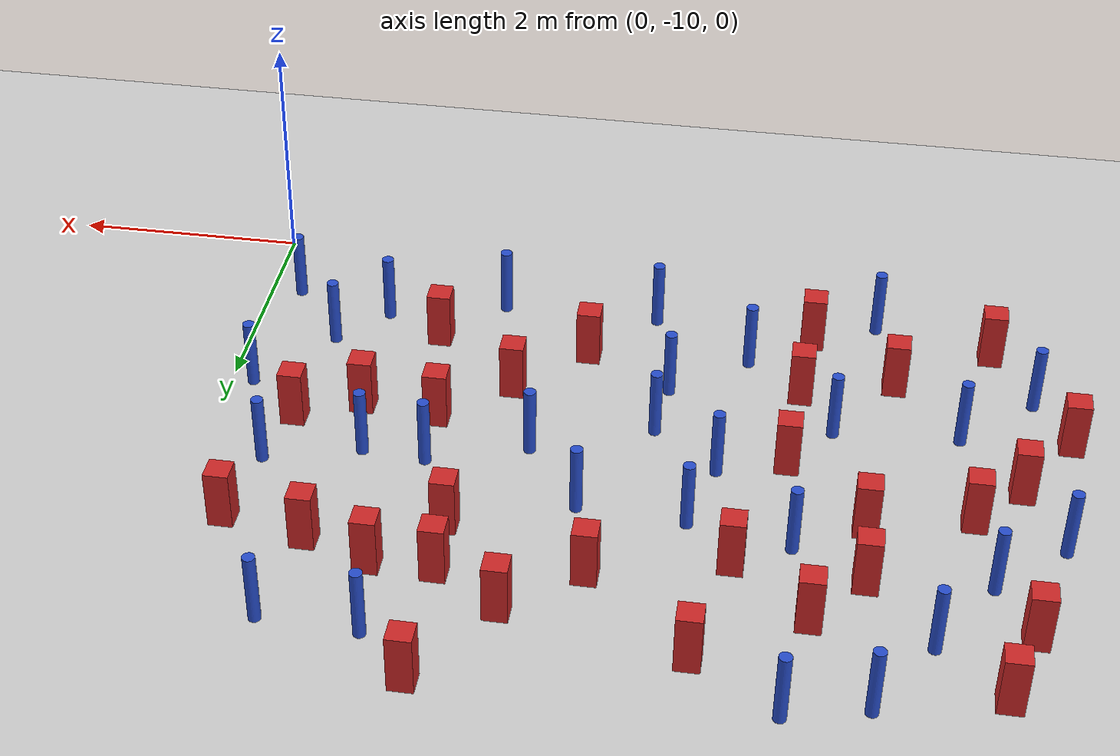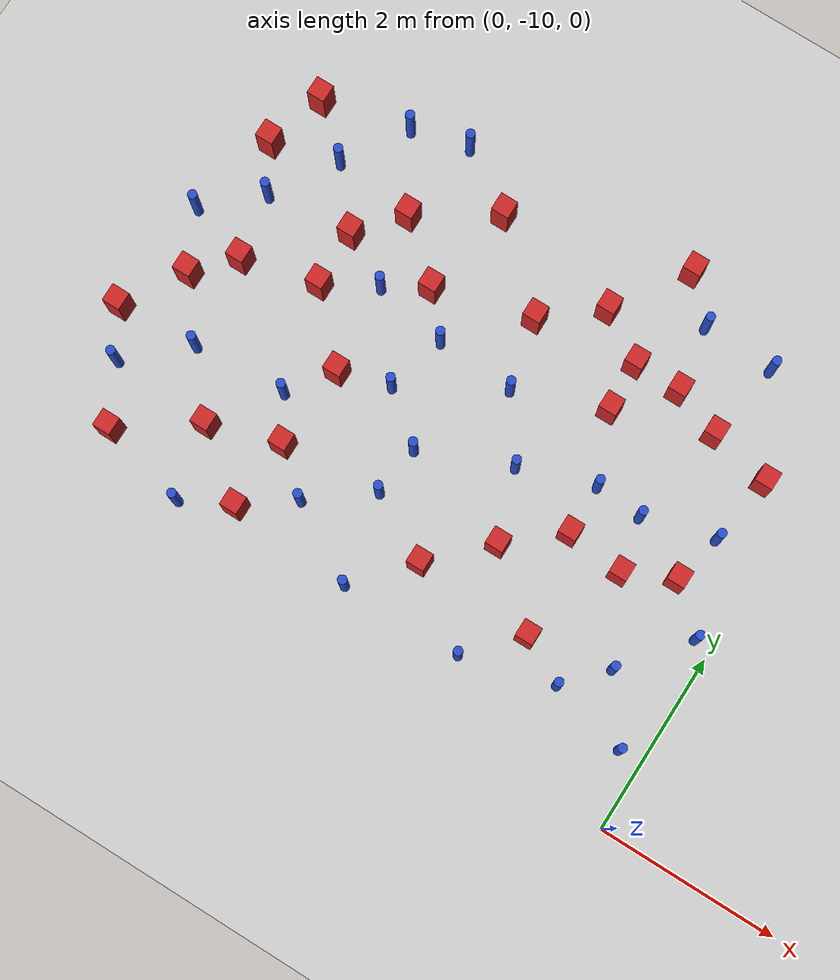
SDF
<sdf version="1.6">
 <world name="default">
  <model name="ground_plane">
   <static>1</static>
   <link name="link">
    <collision name="collision">
     <geometry><plane><normal>0 0 1</normal><size>100 100</size></plane></geometry>
     <surface><friction><ode><mu>100</mu><mu2>50</mu2></ode></friction></surface>
    </collision>
    <visual name="visual">
     <cast_shadows>0</cast_shadows>
     <geometry><plane><normal>0 0 1</normal><size>100 100</size></plane></geometry>
     <material>
      <ambient>1.0 1.0 1.0 1.0</ambient>
      <diffuse>0.8 0.8 0.8 1.0</diffuse>
      <specular>0.01 0.01 0.01 1.000000</specular>
     </material>
    </visual>
   </link>
  </model>
  <model name="square_post_obstacle0">
   <static>true</static>
   <pose>-2.3891648593 -8.11974286736 1.91545236811e-07 -7.35059704564e-06 1.12565212e-07 2.39332434364e-05</pose>
   <link name="link">
    <pose>0 0 0.25 0 -0 0</pose>
    <inertial>
     <mass>100</mass>
     <inertia>
      <ixx>0.166667</ixx>
      <ixy>0</ixy>
      <ixz>0</ixz>
      <iyy>0.166667</iyy>
      <iyz>0</iyz>
      <izz>0.166667</izz>
     </inertia>
    </inertial>
    <collision name="collision"><geometry><box><size>.2 .2 .5</size></box></geometry></collision>
    <visual name="visual">
     <geometry><box><size>.2 .2 .5</size></box></geometry>
     <material>
      <script><name>Gazebo/Red</name><uri>file://media/materials/scripts/gazebo.material</uri></script>
     </material>
    </visual>
   </link>
  </model>
  <model name="square_post_obstacle5">
   <static>true</static>
   <pose>-2.180293744 -4.64362342363 1.91545236811e-07 -7.35059704564e-06 1.12565212e-07 2.39332434364e-05</pose>
   <link name="link">
    <pose>0 0 0.25 0 -0 0</pose>
    <inertial>
     <mass>100</mass>
     <inertia>
      <ixx>0.166667</ixx>
      <ixy>0</ixy>
      <ixz>0</ixz>
      <iyy>0.166667</iyy>
      <iyz>0</iyz>
      <izz>0.166667</izz>
     </inertia>
    </inertial>
    <collision name="collision"><geometry><box><size>.2 .2 .5</size></box></geometry></collision>
    <visual name="visual">
     <geometry><box><size>.2 .2 .5</size></box></geometry>
     <material>
      <script><name>Gazebo/Red</name><uri>file://media/materials/scripts/gazebo.material</uri></script>
     </material>
    </visual>
   </link>
  </model>
  <model name="square_post_obstacle7">
   <static>true</static>
   <pose>-2.71536622169 -5.4466309811 1.91545236811e-07 -7.35059704564e-06 1.12565212e-07 2.39332434364e-05</pose>
   <link name="link">
    <pose>0 0 0.25 0 -0 0</pose>
    <inertial>
     <mass>100</mass>
     <inertia>
      <ixx>0.166667</ixx>
      <ixy>0</ixy>
      <ixz>0</ixz>
      <iyy>0.166667</iyy>
      <iyz>0</iyz>
      <izz>0.166667</izz>
     </inertia>
    </inertial>
    <collision name="collision"><geometry><box><size>.2 .2 .5</size></box></geometry></collision>
    <visual name="visual">
     <geometry><box><size>.2 .2 .5</size></box></geometry>
     <material>
      <script><name>Gazebo/Red</name><uri>file://media/materials/scripts/gazebo.material</uri></script>
     </material>
    </visual>
   </link>
  </model>
  <model name="square_post_obstacle17">
   <static>true</static>
   <pose>-4.99143158666 -5.68737844783 1.91545236811e-07 -7.35059704564e-06 1.12565212e-07 2.39332434364e-05</pose>
   <link name="link">
    <pose>0 0 0.25 0 -0 0</pose>
    <inertial>
     <mass>100</mass>
     <inertia>
      <ixx>0.166667</ixx>
      <ixy>0</ixy>
      <ixz>0</ixz>
      <iyy>0.166667</iyy>
      <iyz>0</iyz>
      <izz>0.166667</izz>
     </inertia>
    </inertial>
    <collision name="collision"><geometry><box><size>.2 .2 .5</size></box></geometry></collision>
    <visual name="visual">
     <geometry><box><size>.2 .2 .5</size></box></geometry>
     <material>
      <script><name>Gazebo/Red</name><uri>file://media/materials/scripts/gazebo.material</uri></script>
     </material>
    </visual>
   </link>
  </model>
  <model name="square_post_obstacle19">
   <static>true</static>
   <pose>-4.1564367619 -5.15919785899 1.91545236811e-07 -7.35059704564e-06 1.12565212e-07 2.39332434364e-05</pose>
   <link name="link">
    <pose>0 0 0.25 0 -0 0</pose>
    <inertial>
     <mass>100</mass>
     <inertia>
      <ixx>0.166667</ixx>
      <ixy>0</ixy>
      <ixz>0</ixz>
      <iyy>0.166667</iyy>
      <iyz>0</iyz>
      <izz>0.166667</izz>
     </inertia>
    </inertial>
    <collision name="collision"><geometry><box><size>.2 .2 .5</size></box></geometry></collision>
    <visual name="visual">
     <geometry><box><size>.2 .2 .5</size></box></geometry>
     <material>
      <script><name>Gazebo/Red</name><uri>file://media/materials/scripts/gazebo.material</uri></script>
     </material>
    </visual>
   </link>
  </model>
  <model name="pole_obstacle11">
   <static>true</static>
   <pose>-5.47349286889 -4.87875105383 7.38925637345e-09 -8.47170692796e-08 1.24976764786e-08 -1.74513093032e-07</pose>
   <link name="link">
    <pose>0 0 0.3 0 -0 0</pose>
    <inertial>
     <mass>1</mass>
     <inertia><ixx>0.145833</ixx><ixy>0</ixy><ixz>0</ixz><iyy>0.145833</iyy><iyz>0</iyz><izz>0.125</izz></inertia>
    </inertial>
    <collision name="collision">
     <geometry><cylinder><radius>0.05</radius><length>.6</length></cylinder></geometry>
    </collision>
    <visual name="visual">
     <geometry><cylinder><radius>0.05</radius><length>.6</length></cylinder></geometry>
     <material>
      <script><name>Gazebo/Blue</name><uri>file://media/materials/scripts/gazebo.material</uri></script>
     </material>
    </visual>
   </link>
  </model>
  <model name="square_post_obstacle23">
   <static>true</static>
   <pose>-1.83239372337 -7.63610435766 1.91545236811e-07 -7.35059704564e-06 1.12565212e-07 2.39332434364e-05</pose>
   <link name="link">
    <pose>0 0 0.25 0 -0 0</pose>
    <inertial>
     <mass>100</mass>
     <inertia>
      <ixx>0.166667</ixx>
      <ixy>0</ixy>
      <ixz>0</ixz>
      <iyy>0.166667</iyy>
      <iyz>0</iyz>
      <izz>0.166667</izz>
     </inertia>
    </inertial>
    <collision name="collision"><geometry><box><size>.2 .2 .5</size></box></geometry></collision>
    <visual name="visual">
     <geometry><box><size>.2 .2 .5</size></box></geometry>
     <material>
      <script><name>Gazebo/Red</name><uri>file://media/materials/scripts/gazebo.material</uri></script>
     </material>
    </visual>
   </link>
  </model>
  <model name="square_post_obstacle24">
   <static>true</static>
   <pose>-5.56124573344 -8.64659274327 1.91545236811e-07 -7.35059704564e-06 1.12565212e-07 2.39332434364e-05</pose>
   <link name="link">
    <pose>0 0 0.25 0 -0 0</pose>
    <inertial>
     <mass>100</mass>
     <inertia>
      <ixx>0.166667</ixx>
      <ixy>0</ixy>
      <ixz>0</ixz>
      <iyy>0.166667</iyy>
      <iyz>0</iyz>
      <izz>0.166667</izz>
     </inertia>
    </inertial>
    <collision name="collision"><geometry><box><size>.2 .2 .5</size></box></geometry></collision>
    <visual name="visual">
     <geometry><box><size>.2 .2 .5</size></box></geometry>
     <material>
      <script><name>Gazebo/Red</name><uri>file://media/materials/scripts/gazebo.material</uri></script>
     </material>
    </visual>
   </link>
  </model>
  <model name="pole_obstacle32">
   <static>true</static>
   <pose>-4.82689784797 -6.48459957443 7.38925637345e-09 -8.47170692796e-08 1.24976764786e-08 -1.74513093032e-07</pose>
   <link name="link">
    <pose>0 0 0.3 0 -0 0</pose>
    <inertial>
     <mass>1</mass>
     <inertia><ixx>0.145833</ixx><ixy>0</ixy><ixz>0</ixz><iyy>0.145833</iyy><iyz>0</iyz><izz>0.125</izz></inertia>
    </inertial>
    <collision name="collision">
     <geometry><cylinder><radius>0.05</radius><length>.6</length></cylinder></geometry>
    </collision>
    <visual name="visual">
     <geometry><cylinder><radius>0.05</radius><length>.6</length></cylinder></geometry>
     <material>
      <script><name>Gazebo/Blue</name><uri>file://media/materials/scripts/gazebo.material</uri></script>
     </material>
    </visual>
   </link>
  </model>
  <model name="square_post_obstacle39">
   <static>true</static>
   <pose>-4.37801893824 -6.21407613872 1.91545236811e-07 -7.35059704564e-06 1.12565212e-07 2.39332434364e-05</pose>
   <link name="link">
    <pose>0 0 0.25 0 -0 0</pose>
    <inertial>
     <mass>100</mass>
     <inertia>
      <ixx>0.166667</ixx>
      <ixy>0</ixy>
      <ixz>0</ixz>
      <iyy>0.166667</iyy>
      <iyz>0</iyz>
      <izz>0.166667</izz>
     </inertia>
    </inertial>
    <collision name="collision"><geometry><box><size>.2 .2 .5</size></box></geometry></collision>
    <visual name="visual">
     <geometry><box><size>.2 .2 .5</size></box></geometry>
     <material>
      <script><name>Gazebo/Red</name><uri>file://media/materials/scripts/gazebo.material</uri></script>
     </material>
    </visual>
   </link>
  </model>
  <model name="square_post_obstacle43">
   <static>true</static>
   <pose>-2.1523943592 -6.33407351706 1.91545236811e-07 -7.35059704564e-06 1.12565212e-07 2.39332434364e-05</pose>
   <link name="link">
    <pose>0 0 0.25 0 -0 0</pose>
    <inertial>
     <mass>100</mass>
     <inertia>
      <ixx>0.166667</ixx>
      <ixy>0</ixy>
      <ixz>0</ixz>
      <iyy>0.166667</iyy>
      <iyz>0</iyz>
      <izz>0.166667</izz>
     </inertia>
    </inertial>
    <collision name="collision"><geometry><box><size>.2 .2 .5</size></box></geometry></collision>
    <visual name="visual">
     <geometry><box><size>.2 .2 .5</size></box></geometry>
     <material>
      <script><name>Gazebo/Red</name><uri>file://media/materials/scripts/gazebo.material</uri></script>
     </material>
    </visual>
   </link>
  </model>
  <model name="square_post_obstacle49">
   <static>true</static>
   <pose>-4.72814198092 -7.4713475449 1.91545236811e-07 -7.35059704564e-06 1.12565212e-07 2.39332434364e-05</pose>
   <link name="link">
    <pose>0 0 0.25 0 -0 0</pose>
    <inertial>
     <mass>100</mass>
     <inertia>
      <ixx>0.166667</ixx>
      <ixy>0</ixy>
      <ixz>0</ixz>
      <iyy>0.166667</iyy>
      <iyz>0</iyz>
      <izz>0.166667</izz>
     </inertia>
    </inertial>
    <collision name="collision"><geometry><box><size>.2 .2 .5</size></box></geometry></collision>
    <visual name="visual">
     <geometry><box><size>.2 .2 .5</size></box></geometry>
     <material>
      <script><name>Gazebo/Red</name><uri>file://media/materials/scripts/gazebo.material</uri></script>
     </material>
    </visual>
   </link>
  </model>
  <model name="square_post_obstacle54">
   <static>true</static>
   <pose>-5.37316294811 -6.79782491851 1.91545236811e-07 -7.35059704564e-06 1.12565212e-07 2.39332434364e-05</pose>
   <link name="link">
    <pose>0 0 0.25 0 -0 0</pose>
    <inertial>
     <mass>100</mass>
     <inertia>
      <ixx>0.166667</ixx>
      <ixy>0</ixy>
      <ixz>0</ixz>
      <iyy>0.166667</iyy>
      <iyz>0</iyz>
      <izz>0.166667</izz>
     </inertia>
    </inertial>
    <collision name="collision"><geometry><box><size>.2 .2 .5</size></box></geometry></collision>
    <visual name="visual">
     <geometry><box><size>.2 .2 .5</size></box></geometry>
     <material>
      <script><name>Gazebo/Red</name><uri>file://media/materials/scripts/gazebo.material</uri></script>
     </material>
    </visual>
   </link>
  </model>
  <model name="pole_obstacle53">
   <static>true</static>
   <pose>-4.32384566761 -8.80459357005 7.38925637345e-09 -8.471706928e-08 1.24976765081e-08 -1.74513093015e-07</pose>
   <link name="link">
    <pose>0 0 0.3 0 -0 0</pose>
    <inertial>
     <mass>1</mass>
     <inertia><ixx>0.145833</ixx><ixy>0</ixy><ixz>0</ixz><iyy>0.145833</iyy><iyz>0</iyz><izz>0.125</izz></inertia>
    </inertial>
    <collision name="collision">
     <geometry><cylinder><radius>0.05</radius><length>.6</length></cylinder></geometry>
    </collision>
    <visual name="visual">
     <geometry><cylinder><radius>0.05</radius><length>.6</length></cylinder></geometry>
     <material>
      <script><name>Gazebo/Blue</name><uri>file://media/materials/scripts/gazebo.material</uri></script>
     </material>
    </visual>
   </link>
  </model>
  <model name="square_post_obstacle59">
   <static>true</static>
   <pose>-4.7865577026 -8.40475612905 1.91545236811e-07 -7.35059704564e-06 1.12565212e-07 2.39332434364e-05</pose>
   <link name="link">
    <pose>0 0 0.25 0 -0 0</pose>
    <inertial>
     <mass>100</mass>
     <inertia>
      <ixx>0.166667</ixx>
      <ixy>0</ixy>
      <ixz>0</ixz>
      <iyy>0.166667</iyy>
      <iyz>0</iyz>
      <izz>0.166667</izz>
     </inertia>
    </inertial>
    <collision name="collision"><geometry><box><size>.2 .2 .5</size></box></geometry></collision>
    <visual name="visual">
     <geometry><box><size>.2 .2 .5</size></box></geometry>
     <material>
      <script><name>Gazebo/Red</name><uri>file://media/materials/scripts/gazebo.material</uri></script>
     </material>
    </visual>
   </link>
  </model>
  <model name="pole_obstacle63">
   <static>true</static>
   <pose>-1.13143556579 -9.02207831963 7.38925637345e-09 -8.47170692798e-08 1.24976764881e-08 -1.74513093027e-07</pose>
   <link name="link">
    <pose>0 0 0.3 0 -0 0</pose>
    <inertial>
     <mass>1</mass>
     <inertia><ixx>0.145833</ixx><ixy>0</ixy><ixz>0</ixz><iyy>0.145833</iyy><iyz>0</iyz><izz>0.125</izz></inertia>
    </inertial>
    <collision name="collision">
     <geometry><cylinder><radius>0.05</radius><length>.6</length></cylinder></geometry>
    </collision>
    <visual name="visual">
     <geometry><cylinder><radius>0.05</radius><length>.6</length></cylinder></geometry>
     <material>
      <script><name>Gazebo/Blue</name><uri>file://media/materials/scripts/gazebo.material</uri></script>
     </material>
    </visual>
   </link>
  </model>
  <model name="square_post_obstacle70">
   <static>true</static>
   <pose>-1.65825651329 -5.79492062621 1.91545236811e-07 -7.35059704564e-06 1.12565212e-07 2.39332434364e-05</pose>
   <link name="link">
    <pose>0 0 0.25 0 -0 0</pose>
    <inertial>
     <mass>100</mass>
     <inertia>
      <ixx>0.166667</ixx>
      <ixy>0</ixy>
      <ixz>0</ixz>
      <iyy>0.166667</iyy>
      <iyz>0</iyz>
      <izz>0.166667</izz>
     </inertia>
    </inertial>
    <collision name="collision"><geometry><box><size>.2 .2 .5</size></box></geometry></collision>
    <visual name="visual">
     <geometry><box><size>.2 .2 .5</size></box></geometry>
     <material>
      <script><name>Gazebo/Red</name><uri>file://media/materials/scripts/gazebo.material</uri></script>
     </material>
    </visual>
   </link>
  </model>
  <model name="pole_obstacle67">
   <static>true</static>
   <pose>-3.12604637303 -6.6978060009 7.38925637345e-09 -8.47170692794e-08 1.24976764468e-08 -1.7451309304e-07</pose>
   <link name="link">
    <pose>0 0 0.3 0 -0 0</pose>
    <inertial>
     <mass>1</mass>
     <inertia><ixx>0.145833</ixx><ixy>0</ixy><ixz>0</ixz><iyy>0.145833</iyy><iyz>0</iyz><izz>0.125</izz></inertia>
    </inertial>
    <collision name="collision">
     <geometry><cylinder><radius>0.05</radius><length>.6</length></cylinder></geometry>
    </collision>
    <visual name="visual">
     <geometry><cylinder><radius>0.05</radius><length>.6</length></cylinder></geometry>
     <material>
      <script><name>Gazebo/Blue</name><uri>file://media/materials/scripts/gazebo.material</uri></script>
     </material>
    </visual>
   </link>
  </model>
  <model name="square_post_obstacle74">
   <static>true</static>
   <pose>-3.30557799336 -5.92646220045 1.91545236811e-07 -7.35059704564e-06 1.12565212e-07 2.39332434364e-05</pose>
   <link name="link">
    <pose>0 0 0.25 0 -0 0</pose>
    <inertial>
     <mass>100</mass>
     <inertia>
      <ixx>0.166667</ixx>
      <ixy>0</ixy>
      <ixz>0</ixz>
      <iyy>0.166667</iyy>
      <iyz>0</iyz>
      <izz>0.166667</izz>
     </inertia>
    </inertial>
    <collision name="collision"><geometry><box><size>.2 .2 .5</size></box></geometry></collision>
    <visual name="visual">
     <geometry><box><size>.2 .2 .5</size></box></geometry>
     <material>
      <script><name>Gazebo/Red</name><uri>file://media/materials/scripts/gazebo.material</uri></script>
     </material>
    </visual>
   </link>
  </model>
  <model name="pole_obstacle75">
   <static>true</static>
   <pose>-5.3906984268 -9.46785865773 7.38925637345e-09 -8.471706928e-08 1.24976765081e-08 -1.74513093015e-07</pose>
   <link name="link">
    <pose>0 0 0.3 0 -0 0</pose>
    <inertial>
     <mass>1</mass>
     <inertia><ixx>0.145833</ixx><ixy>0</ixy><ixz>0</ixz><iyy>0.145833</iyy><iyz>0</iyz><izz>0.125</izz></inertia>
    </inertial>
    <collision name="collision">
     <geometry><cylinder><radius>0.05</radius><length>.6</length></cylinder></geometry>
    </collision>
    <visual name="visual">
     <geometry><cylinder><radius>0.05</radius><length>.6</length></cylinder></geometry>
     <material>
      <script><name>Gazebo/Blue</name><uri>file://media/materials/scripts/gazebo.material</uri></script>
     </material>
    </visual>
   </link>
  </model>
  <model name="pole_obstacle77">
   <static>true</static>
   <pose>-3.62947106733 -7.75081594505 7.38925637345e-09 -8.47170692798e-08 1.24976765033e-08 -1.74513093019e-07</pose>
   <link name="link">
    <pose>0 0 0.3 0 -0 0</pose>
    <inertial>
     <mass>1</mass>
     <inertia><ixx>0.145833</ixx><ixy>0</ixy><ixz>0</ixz><iyy>0.145833</iyy><iyz>0</iyz><izz>0.125</izz></inertia>
    </inertial>
    <collision name="collision">
     <geometry><cylinder><radius>0.05</radius><length>.6</length></cylinder></geometry>
    </collision>
    <visual name="visual">
     <geometry><cylinder><radius>0.05</radius><length>.6</length></cylinder></geometry>
     <material>
      <script><name>Gazebo/Blue</name><uri>file://media/materials/scripts/gazebo.material</uri></script>
     </material>
    </visual>
   </link>
  </model>
  <model name="pole_obstacle96">
   <static>true</static>
   <pose>-4.00046978902 -6.64305118824 7.38925637345e-09 -8.47170692795e-08 1.24976764731e-08 -1.74513093035e-07</pose>
   <link name="link">
    <pose>0 0 0.3 0 -0 0</pose>
    <inertial>
     <mass>1</mass>
     <inertia><ixx>0.145833</ixx><ixy>0</ixy><ixz>0</ixz><iyy>0.145833</iyy><iyz>0</iyz><izz>0.125</izz></inertia>
    </inertial>
    <collision name="collision">
     <geometry><cylinder><radius>0.05</radius><length>.6</length></cylinder></geometry>
    </collision>
    <visual name="visual">
     <geometry><cylinder><radius>0.05</radius><length>.6</length></cylinder></geometry>
     <material>
      <script><name>Gazebo/Blue</name><uri>file://media/materials/scripts/gazebo.material</uri></script>
     </material>
    </visual>
   </link>
  </model>
  <model name="square_post_obstacle84">
   <static>true</static>
   <pose>-2.17931122541 -5.78671671767 1.91545236811e-07 -7.35059704564e-06 1.12565212e-07 2.39332434364e-05</pose>
   <link name="link">
    <pose>0 0 0.25 0 -0 0</pose>
    <inertial>
     <mass>100</mass>
     <inertia>
      <ixx>0.166667</ixx>
      <ixy>0</ixy>
      <ixz>0</ixz>
      <iyy>0.166667</iyy>
      <iyz>0</iyz>
      <izz>0.166667</izz>
     </inertia>
    </inertial>
    <collision name="collision"><geometry><box><size>.2 .2 .5</size></box></geometry></collision>
    <visual name="visual">
     <geometry><box><size>.2 .2 .5</size></box></geometry>
     <material>
      <script><name>Gazebo/Red</name><uri>file://media/materials/scripts/gazebo.material</uri></script>
     </material>
    </visual>
   </link>
  </model>
  <model name="square_post_obstacle85">
   <static>true</static>
   <pose>-6.42559841193 -5.1103527016 1.91545236811e-07 -7.35059704564e-06 1.12565212e-07 2.39332434364e-05</pose>
   <link name="link">
    <pose>0 0 0.25 0 -0 0</pose>
    <inertial>
     <mass>100</mass>
     <inertia>
      <ixx>0.166667</ixx>
      <ixy>0</ixy>
      <ixz>0</ixz>
      <iyy>0.166667</iyy>
      <iyz>0</iyz>
      <izz>0.166667</izz>
     </inertia>
    </inertial>
    <collision name="collision"><geometry><box><size>.2 .2 .5</size></box></geometry></collision>
    <visual name="visual">
     <geometry><box><size>.2 .2 .5</size></box></geometry>
     <material>
      <script><name>Gazebo/Red</name><uri>file://media/materials/scripts/gazebo.material</uri></script>
     </material>
    </visual>
   </link>
  </model>
  <model name="pole_obstacle98">
   <static>true</static>
   <pose>-1.3150128498 -7.12342213785 7.38925637345e-09 -8.47170692799e-08 1.24976765033e-08 -1.74513093018e-07</pose>
   <link name="link">
    <pose>0 0 0.3 0 -0 0</pose>
    <inertial>
     <mass>1</mass>
     <inertia><ixx>0.145833</ixx><ixy>0</ixy><ixz>0</ixz><iyy>0.145833</iyy><iyz>0</iyz><izz>0.125</izz></inertia>
    </inertial>
    <collision name="collision">
     <geometry><cylinder><radius>0.05</radius><length>.6</length></cylinder></geometry>
    </collision>
    <visual name="visual">
     <geometry><cylinder><radius>0.05</radius><length>.6</length></cylinder></geometry>
     <material>
      <script><name>Gazebo/Blue</name><uri>file://media/materials/scripts/gazebo.material</uri></script>
     </material>
    </visual>
   </link>
  </model>
  <model name="pole_obstacle109">
   <static>true</static>
   <pose>-4.17206239601 -7.31087933826 7.38925637345e-09 -8.47170692796e-08 1.24976764786e-08 -1.74513093032e-07</pose>
   <link name="link">
    <pose>0 0 0.3 0 -0 0</pose>
    <inertial>
     <mass>1</mass>
     <inertia><ixx>0.145833</ixx><ixy>0</ixy><ixz>0</ixz><iyy>0.145833</iyy><iyz>0</iyz><izz>0.125</izz></inertia>
    </inertial>
    <collision name="collision">
     <geometry><cylinder><radius>0.05</radius><length>.6</length></cylinder></geometry>
    </collision>
    <visual name="visual">
     <geometry><cylinder><radius>0.05</radius><length>.6</length></cylinder></geometry>
     <material>
      <script><name>Gazebo/Blue</name><uri>file://media/materials/scripts/gazebo.material</uri></script>
     </material>
    </visual>
   </link>
  </model>
  <model name="pole_obstacle112">
   <static>true</static>
   <pose>-3.68918024209 -8.30836831942 7.38925637345e-09 -8.47170692799e-08 1.24976765012e-08 -1.74513093021e-07</pose>
   <link name="link">
    <pose>0 0 0.3 0 -0 0</pose>
    <inertial>
     <mass>1</mass>
     <inertia><ixx>0.145833</ixx><ixy>0</ixy><ixz>0</ixz><iyy>0.145833</iyy><iyz>0</iyz><izz>0.125</izz></inertia>
    </inertial>
    <collision name="collision">
     <geometry><cylinder><radius>0.05</radius><length>.6</length></cylinder></geometry>
    </collision>
    <visual name="visual">
     <geometry><cylinder><radius>0.05</radius><length>.6</length></cylinder></geometry>
     <material>
      <script><name>Gazebo/Blue</name><uri>file://media/materials/scripts/gazebo.material</uri></script>
     </material>
    </visual>
   </link>
  </model>
  <model name="square_post_obstacle99">
   <static>true</static>
   <pose>-6.36780543418 -9.20024354109 1.91545236811e-07 -7.35059704564e-06 1.12565212e-07 2.39332434364e-05</pose>
   <link name="link">
    <pose>0 0 0.25 0 -0 0</pose>
    <inertial>
     <mass>100</mass>
     <inertia>
      <ixx>0.166667</ixx>
      <ixy>0</ixy>
      <ixz>0</ixz>
      <iyy>0.166667</iyy>
      <iyz>0</iyz>
      <izz>0.166667</izz>
     </inertia>
    </inertial>
    <collision name="collision"><geometry><box><size>.2 .2 .5</size></box></geometry></collision>
    <visual name="visual">
     <geometry><box><size>.2 .2 .5</size></box></geometry>
     <material>
      <script><name>Gazebo/Red</name><uri>file://media/materials/scripts/gazebo.material</uri></script>
     </material>
    </visual>
   </link>
  </model>
  <model name="square_post_obstacle102">
   <static>true</static>
   <pose>-2.95634271158 -8.69631814272 1.91545236811e-07 -7.35059704564e-06 1.12565212e-07 2.39332434364e-05</pose>
   <link name="link">
    <pose>0 0 0.25 0 -0 0</pose>
    <inertial>
     <mass>100</mass>
     <inertia>
      <ixx>0.166667</ixx>
      <ixy>0</ixy>
      <ixz>0</ixz>
      <iyy>0.166667</iyy>
      <iyz>0</iyz>
      <izz>0.166667</izz>
     </inertia>
    </inertial>
    <collision name="collision"><geometry><box><size>.2 .2 .5</size></box></geometry></collision>
    <visual name="visual">
     <geometry><box><size>.2 .2 .5</size></box></geometry>
     <material>
      <script><name>Gazebo/Red</name><uri>file://media/materials/scripts/gazebo.material</uri></script>
     </material>
    </visual>
   </link>
  </model>
  <model name="square_post_obstacle104">
   <static>true</static>
   <pose>-0.663726455007 -7.46521076082 1.91545236811e-07 -7.35059704564e-06 1.12565212e-07 2.39332434364e-05</pose>
   <link name="link">
    <pose>0 0 0.25 0 -0 0</pose>
    <inertial>
     <mass>100</mass>
     <inertia>
      <ixx>0.166667</ixx>
      <ixy>0</ixy>
      <ixz>0</ixz>
      <iyy>0.166667</iyy>
      <iyz>0</iyz>
      <izz>0.166667</izz>
     </inertia>
    </inertial>
    <collision name="collision"><geometry><box><size>.2 .2 .5</size></box></geometry></collision>
    <visual name="visual">
     <geometry><box><size>.2 .2 .5</size></box></geometry>
     <material>
      <script><name>Gazebo/Red</name><uri>file://media/materials/scripts/gazebo.material</uri></script>
     </material>
    </visual>
   </link>
  </model>
  <model name="square_post_obstacle107">
   <static>true</static>
   <pose>-6.99771679989 -8.06988485588 1.91545236811e-07 -7.35059704564e-06 1.12565212e-07 2.39332434364e-05</pose>
   <link name="link">
    <pose>0 0 0.25 0 -0 0</pose>
    <inertial>
     <mass>100</mass>
     <inertia>
      <ixx>0.166667</ixx>
      <ixy>0</ixy>
      <ixz>0</ixz>
      <iyy>0.166667</iyy>
      <iyz>0</iyz>
      <izz>0.166667</izz>
     </inertia>
    </inertial>
    <collision name="collision"><geometry><box><size>.2 .2 .5</size></box></geometry></collision>
    <visual name="visual">
     <geometry><box><size>.2 .2 .5</size></box></geometry>
     <material>
      <script><name>Gazebo/Red</name><uri>file://media/materials/scripts/gazebo.material</uri></script>
     </material>
    </visual>
   </link>
  </model>
  <model name="square_post_obstacle110">
   <static>true</static>
   <pose>-0.431231990283 -6.14655298406 1.91545236811e-07 -7.35059704564e-06 1.12565212e-07 2.39332434364e-05</pose>
   <link name="link">
    <pose>0 0 0.25 0 -0 0</pose>
    <inertial>
     <mass>100</mass>
     <inertia>
      <ixx>0.166667</ixx>
      <ixy>0</ixy>
      <ixz>0</ixz>
      <iyy>0.166667</iyy>
      <iyz>0</iyz>
      <izz>0.166667</izz>
     </inertia>
    </inertial>
    <collision name="collision"><geometry><box><size>.2 .2 .5</size></box></geometry></collision>
    <visual name="visual">
     <geometry><box><size>.2 .2 .5</size></box></geometry>
     <material>
      <script><name>Gazebo/Red</name><uri>file://media/materials/scripts/gazebo.material</uri></script>
     </material>
    </visual>
   </link>
  </model>
  <model name="pole_obstacle122">
   <static>true</static>
   <pose>-2.65489183942 -7.35489237342 7.38925637345e-09 -8.47170692798e-08 1.24976765033e-08 -1.74513093019e-07</pose>
   <link name="link">
    <pose>0 0 0.3 0 -0 0</pose>
    <inertial>
     <mass>1</mass>
     <inertia><ixx>0.145833</ixx><ixy>0</ixy><ixz>0</ixz><iyy>0.145833</iyy><iyz>0</iyz><izz>0.125</izz></inertia>
    </inertial>
    <collision name="collision">
     <geometry><cylinder><radius>0.05</radius><length>.6</length></cylinder></geometry>
    </collision>
    <visual name="visual">
     <geometry><cylinder><radius>0.05</radius><length>.6</length></cylinder></geometry>
     <material>
      <script><name>Gazebo/Blue</name><uri>file://media/materials/scripts/gazebo.material</uri></script>
     </material>
    </visual>
   </link>
  </model>
  <model name="pole_obstacle132">
   <static>true</static>
   <pose>-0.267716238011 -9.24329335417 7.38925637345e-09 -8.47170692796e-08 1.24976764755e-08 -1.74513093035e-07</pose>
   <link name="link">
    <pose>0 0 0.3 0 -0 0</pose>
    <inertial>
     <mass>1</mass>
     <inertia><ixx>0.145833</ixx><ixy>0</ixy><ixz>0</ixz><iyy>0.145833</iyy><iyz>0</iyz><izz>0.125</izz></inertia>
    </inertial>
    <collision name="collision">
     <geometry><cylinder><radius>0.05</radius><length>.6</length></cylinder></geometry>
    </collision>
    <visual name="visual">
     <geometry><cylinder><radius>0.05</radius><length>.6</length></cylinder></geometry>
     <material>
      <script><name>Gazebo/Blue</name><uri>file://media/materials/scripts/gazebo.material</uri></script>
     </material>
    </visual>
   </link>
  </model>
  <model name="pole_obstacle145">
   <static>true</static>
   <pose>-0.967396166775 -5.10573790453 7.38925637345e-09 -8.47170692799e-08 1.2497676509e-08 -1.74513093015e-07</pose>
   <link name="link">
    <pose>0 0 0.3 0 -0 0</pose>
    <inertial>
     <mass>1</mass>
     <inertia><ixx>0.145833</ixx><ixy>0</ixy><ixz>0</ixz><iyy>0.145833</iyy><iyz>0</iyz><izz>0.125</izz></inertia>
    </inertial>
    <collision name="collision">
     <geometry><cylinder><radius>0.05</radius><length>.6</length></cylinder></geometry>
    </collision>
    <visual name="visual">
     <geometry><cylinder><radius>0.05</radius><length>.6</length></cylinder></geometry>
     <material>
      <script><name>Gazebo/Blue</name><uri>file://media/materials/scripts/gazebo.material</uri></script>
     </material>
    </visual>
   </link>
  </model>
  <model name="square_post_obstacle136">
   <static>true</static>
   <pose>-6.63104162377 -5.77668165308 1.91545236811e-07 -7.35059704564e-06 1.12565212e-07 2.39332434364e-05</pose>
   <link name="link">
    <pose>0 0 0.25 0 -0 0</pose>
    <inertial>
     <mass>100</mass>
     <inertia>
      <ixx>0.166667</ixx>
      <ixy>0</ixy>
      <ixz>0</ixz>
      <iyy>0.166667</iyy>
      <iyz>0</iyz>
      <izz>0.166667</izz>
     </inertia>
    </inertial>
    <collision name="collision"><geometry><box><size>.2 .2 .5</size></box></geometry></collision>
    <visual name="visual">
     <geometry><box><size>.2 .2 .5</size></box></geometry>
     <material>
      <script><name>Gazebo/Red</name><uri>file://media/materials/scripts/gazebo.material</uri></script>
     </material>
    </visual>
   </link>
  </model>
  <model name="pole_obstacle148">
   <static>true</static>
   <pose>-1.76620089216 -5.06850198421 7.38925637345e-09 -8.47170692799e-08 1.24976765033e-08 -1.74513093018e-07</pose>
   <link name="link">
    <pose>0 0 0.3 0 -0 0</pose>
    <inertial>
     <mass>1</mass>
     <inertia><ixx>0.145833</ixx><ixy>0</ixy><ixz>0</ixz><iyy>0.145833</iyy><iyz>0</iyz><izz>0.125</izz></inertia>
    </inertial>
    <collision name="collision">
     <geometry><cylinder><radius>0.05</radius><length>.6</length></cylinder></geometry>
    </collision>
    <visual name="visual">
     <geometry><cylinder><radius>0.05</radius><length>.6</length></cylinder></geometry>
     <material>
      <script><name>Gazebo/Blue</name><uri>file://media/materials/scripts/gazebo.material</uri></script>
     </material>
    </visual>
   </link>
  </model>
  <model name="pole_obstacle150">
   <static>true</static>
   <pose>-6.10678849985 -8.01683290774 7.38925637345e-09 -8.47170692796e-08 1.24976764734e-08 -1.74513093037e-07</pose>
   <link name="link">
    <pose>0 0 0.3 0 -0 0</pose>
    <inertial>
     <mass>1</mass>
     <inertia><ixx>0.145833</ixx><ixy>0</ixy><ixz>0</ixz><iyy>0.145833</iyy><iyz>0</iyz><izz>0.125</izz></inertia>
    </inertial>
    <collision name="collision">
     <geometry><cylinder><radius>0.05</radius><length>.6</length></cylinder></geometry>
    </collision>
    <visual name="visual">
     <geometry><cylinder><radius>0.05</radius><length>.6</length></cylinder></geometry>
     <material>
      <script><name>Gazebo/Blue</name><uri>file://media/materials/scripts/gazebo.material</uri></script>
     </material>
    </visual>
   </link>
  </model>
  <model name="square_post_obstacle141">
   <static>true</static>
   <pose>-5.39100610986 -6.16671443871 1.91545236811e-07 -7.35059704564e-06 1.12565212e-07 2.39332434364e-05</pose>
   <link name="link">
    <pose>0 0 0.25 0 -0 0</pose>
    <inertial>
     <mass>100</mass>
     <inertia>
      <ixx>0.166667</ixx>
      <ixy>0</ixy>
      <ixz>0</ixz>
      <iyy>0.166667</iyy>
      <iyz>0</iyz>
      <izz>0.166667</izz>
     </inertia>
    </inertial>
    <collision name="collision"><geometry><box><size>.2 .2 .5</size></box></geometry></collision>
    <visual name="visual">
     <geometry><box><size>.2 .2 .5</size></box></geometry>
     <material>
      <script><name>Gazebo/Red</name><uri>file://media/materials/scripts/gazebo.material</uri></script>
     </material>
    </visual>
   </link>
  </model>
  <model name="pole_obstacle153">
   <static>true</static>
   <pose>-6.71017748225 -8.57462423331 7.38925637345e-09 -8.471706928e-08 1.24976765081e-08 -1.74513093015e-07</pose>
   <link name="link">
    <pose>0 0 0.3 0 -0 0</pose>
    <inertial>
     <mass>1</mass>
     <inertia><ixx>0.145833</ixx><ixy>0</ixy><ixz>0</ixz><iyy>0.145833</iyy><iyz>0</iyz><izz>0.125</izz></inertia>
    </inertial>
    <collision name="collision">
     <geometry><cylinder><radius>0.05</radius><length>.6</length></cylinder></geometry>
    </collision>
    <visual name="visual">
     <geometry><cylinder><radius>0.05</radius><length>.6</length></cylinder></geometry>
     <material>
      <script><name>Gazebo/Blue</name><uri>file://media/materials/scripts/gazebo.material</uri></script>
     </material>
    </visual>
   </link>
  </model>
  <model name="square_post_obstacle156">
   <static>true</static>
   <pose>-6.20807915327 -6.99549786661 1.91545236811e-07 -7.35059704564e-06 1.12565212e-07 2.39332434364e-05</pose>
   <link name="link">
    <pose>0 0 0.25 0 -0 0</pose>
    <inertial>
     <mass>100</mass>
     <inertia>
      <ixx>0.166667</ixx>
      <ixy>0</ixy>
      <ixz>0</ixz>
      <iyy>0.166667</iyy>
      <iyz>0</iyz>
      <izz>0.166667</izz>
     </inertia>
    </inertial>
    <collision name="collision"><geometry><box><size>.2 .2 .5</size></box></geometry></collision>
    <visual name="visual">
     <geometry><box><size>.2 .2 .5</size></box></geometry>
     <material>
      <script><name>Gazebo/Red</name><uri>file://media/materials/scripts/gazebo.material</uri></script>
     </material>
    </visual>
   </link>
  </model>
  <model name="pole_obstacle164">
   <static>true</static>
   <pose>-1.84093333685 -7.08039402443 7.38925637345e-09 -8.47170692799e-08 1.24976765033e-08 -1.74513093018e-07</pose>
   <link name="link">
    <pose>0 0 0.3 0 -0 0</pose>
    <inertial>
     <mass>1</mass>
     <inertia><ixx>0.145833</ixx><ixy>0</ixy><ixz>0</ixz><iyy>0.145833</iyy><iyz>0</iyz><izz>0.125</izz></inertia>
    </inertial>
    <collision name="collision">
     <geometry><cylinder><radius>0.05</radius><length>.6</length></cylinder></geometry>
    </collision>
    <visual name="visual">
     <geometry><cylinder><radius>0.05</radius><length>.6</length></cylinder></geometry>
     <material>
      <script><name>Gazebo/Blue</name><uri>file://media/materials/scripts/gazebo.material</uri></script>
     </material>
    </visual>
   </link>
  </model>
  <model name="pole_obstacle167">
   <static>true</static>
   <pose>-2.13493723737 -9.28979733456 7.38925637345e-09 -8.47170692793e-08 1.24976764408e-08 -1.74513093041e-07</pose>
   <link name="link">
    <pose>0 0 0.3 0 -0 0</pose>
    <inertial>
     <mass>1</mass>
     <inertia><ixx>0.145833</ixx><ixy>0</ixy><ixz>0</ixz><iyy>0.145833</iyy><iyz>0</iyz><izz>0.125</izz></inertia>
    </inertial>
    <collision name="collision">
     <geometry><cylinder><radius>0.05</radius><length>.6</length></cylinder></geometry>
    </collision>
    <visual name="visual">
     <geometry><cylinder><radius>0.05</radius><length>.6</length></cylinder></geometry>
     <material>
      <script><name>Gazebo/Blue</name><uri>file://media/materials/scripts/gazebo.material</uri></script>
     </material>
    </visual>
   </link>
  </model>
  <model name="pole_obstacle175">
   <static>true</static>
   <pose>-0.192482674673 -7.88868926992 7.38925637345e-09 -8.47170692799e-08 1.24976765068e-08 -1.74513093018e-07</pose>
   <link name="link">
    <pose>0 0 0.3 0 -0 0</pose>
    <inertial>
     <mass>1</mass>
     <inertia><ixx>0.145833</ixx><ixy>0</ixy><ixz>0</ixz><iyy>0.145833</iyy><iyz>0</iyz><izz>0.125</izz></inertia>
    </inertial>
    <collision name="collision">
     <geometry><cylinder><radius>0.05</radius><length>.6</length></cylinder></geometry>
    </collision>
    <visual name="visual">
     <geometry><cylinder><radius>0.05</radius><length>.6</length></cylinder></geometry>
     <material>
      <script><name>Gazebo/Blue</name><uri>file://media/materials/scripts/gazebo.material</uri></script>
     </material>
    </visual>
   </link>
  </model>
  <model name="pole_obstacle177">
   <static>true</static>
   <pose>-0.534117056432 -6.90553744378 7.38925637345e-09 -8.471706928e-08 1.24976765117e-08 -1.74513093013e-07</pose>
   <link name="link">
    <pose>0 0 0.3 0 -0 0</pose>
    <inertial>
     <mass>1</mass>
     <inertia><ixx>0.145833</ixx><ixy>0</ixy><ixz>0</ixz><iyy>0.145833</iyy><iyz>0</iyz><izz>0.125</izz></inertia>
    </inertial>
    <collision name="collision">
     <geometry><cylinder><radius>0.05</radius><length>.6</length></cylinder></geometry>
    </collision>
    <visual name="visual">
     <geometry><cylinder><radius>0.05</radius><length>.6</length></cylinder></geometry>
     <material>
      <script><name>Gazebo/Blue</name><uri>file://media/materials/scripts/gazebo.material</uri></script>
     </material>
    </visual>
   </link>
  </model>
  <model name="square_post_obstacle166">
   <static>true</static>
   <pose>-1.11818391883 -5.98900662203 1.91545236811e-07 -7.35059704564e-06 1.12565212e-07 2.39332434364e-05</pose>
   <link name="link">
    <pose>0 0 0.25 0 -0 0</pose>
    <inertial>
     <mass>100</mass>
     <inertia>
      <ixx>0.166667</ixx>
      <ixy>0</ixy>
      <ixz>0</ixz>
      <iyy>0.166667</iyy>
      <iyz>0</iyz>
      <izz>0.166667</izz>
     </inertia>
    </inertial>
    <collision name="collision"><geometry><box><size>.2 .2 .5</size></box></geometry></collision>
    <visual name="visual">
     <geometry><box><size>.2 .2 .5</size></box></geometry>
     <material>
      <script><name>Gazebo/Red</name><uri>file://media/materials/scripts/gazebo.material</uri></script>
     </material>
    </visual>
   </link>
  </model>
  <model name="pole_obstacle182">
   <static>true</static>
   <pose>-3.48149014429 -9.29942221354 7.38925637345e-09 -8.47170692793e-08 1.24976764408e-08 -1.74513093041e-07</pose>
   <link name="link">
    <pose>0 0 0.3 0 -0 0</pose>
    <inertial>
     <mass>1</mass>
     <inertia><ixx>0.145833</ixx><ixy>0</ixy><ixz>0</ixz><iyy>0.145833</iyy><iyz>0</iyz><izz>0.125</izz></inertia>
    </inertial>
    <collision name="collision">
     <geometry><cylinder><radius>0.05</radius><length>.6</length></cylinder></geometry>
    </collision>
    <visual name="visual">
     <geometry><cylinder><radius>0.05</radius><length>.6</length></cylinder></geometry>
     <material>
      <script><name>Gazebo/Blue</name><uri>file://media/materials/scripts/gazebo.material</uri></script>
     </material>
    </visual>
   </link>
  </model>
  <model name="square_post_obstacle181">
   <static>true</static>
   <pose>-1.1904975209 -7.7115544772 1.91545236811e-07 -7.35059704564e-06 1.12565212e-07 2.39332434364e-05</pose>
   <link name="link">
    <pose>0 0 0.25 0 -0 0</pose>
    <inertial>
     <mass>100</mass>
     <inertia>
      <ixx>0.166667</ixx>
      <ixy>0</ixy>
      <ixz>0</ixz>
      <iyy>0.166667</iyy>
      <iyz>0</iyz>
      <izz>0.166667</izz>
     </inertia>
    </inertial>
    <collision name="collision"><geometry><box><size>.2 .2 .5</size></box></geometry></collision>
    <visual name="visual">
     <geometry><box><size>.2 .2 .5</size></box></geometry>
     <material>
      <script><name>Gazebo/Red</name><uri>file://media/materials/scripts/gazebo.material</uri></script>
     </material>
    </visual>
   </link>
  </model>
  <model name="square_post_obstacle186">
   <static>true</static>
   <pose>-6.58511001701 -7.4047695835 1.91545236811e-07 -7.35059704564e-06 1.12565212e-07 2.39332434364e-05</pose>
   <link name="link">
    <pose>0 0 0.25 0 -0 0</pose>
    <inertial>
     <mass>100</mass>
     <inertia>
      <ixx>0.166667</ixx>
      <ixy>0</ixy>
      <ixz>0</ixz>
      <iyy>0.166667</iyy>
      <iyz>0</iyz>
      <izz>0.166667</izz>
     </inertia>
    </inertial>
    <collision name="collision"><geometry><box><size>.2 .2 .5</size></box></geometry></collision>
    <visual name="visual">
     <geometry><box><size>.2 .2 .5</size></box></geometry>
     <material>
      <script><name>Gazebo/Red</name><uri>file://media/materials/scripts/gazebo.material</uri></script>
     </material>
    </visual>
   </link>
  </model>
  <model name="square_post_obstacle200">
   <static>true</static>
   <pose>-1.6477320297 -8.74969791868 1.91545236811e-07 -7.35059704564e-06 1.12565212e-07 2.39332434364e-05</pose>
   <link name="link">
    <pose>0 0 0.25 0 -0 0</pose>
    <inertial>
     <mass>100</mass>
     <inertia>
      <ixx>0.166667</ixx>
      <ixy>0</ixy>
      <ixz>0</ixz>
      <iyy>0.166667</iyy>
      <iyz>0</iyz>
      <izz>0.166667</izz>
     </inertia>
    </inertial>
    <collision name="collision"><geometry><box><size>.2 .2 .5</size></box></geometry></collision>
    <visual name="visual">
     <geometry><box><size>.2 .2 .5</size></box></geometry>
     <material>
      <script><name>Gazebo/Red</name><uri>file://media/materials/scripts/gazebo.material</uri></script>
     </material>
    </visual>
   </link>
  </model>
  <model name="pole_obstacle192">
   <static>true</static>
   <pose>-0.741542258624 -8.58989725067 7.38925637345e-09 -8.47170692797e-08 1.249767648e-08 -1.74513093032e-07</pose>
   <link name="link">
    <pose>0 0 0.3 0 -0 0</pose>
    <inertial>
     <mass>1</mass>
     <inertia><ixx>0.145833</ixx><ixy>0</ixy><ixz>0</ixz><iyy>0.145833</iyy><iyz>0</iyz><izz>0.125</izz></inertia>
    </inertial>
    <collision name="collision">
     <geometry><cylinder><radius>0.05</radius><length>.6</length></cylinder></geometry>
    </collision>
    <visual name="visual">
     <geometry><cylinder><radius>0.05</radius><length>.6</length></cylinder></geometry>
     <material>
      <script><name>Gazebo/Blue</name><uri>file://media/materials/scripts/gazebo.material</uri></script>
     </material>
    </visual>
   </link>
  </model>
  <model name="square_post_obstacle212">
   <static>true</static>
   <pose>-4.84628970008 -9.20046830339 1.91545236811e-07 -7.35059704564e-06 1.12565212e-07 2.39332434364e-05</pose>
   <link name="link">
    <pose>0 0 0.25 0 -0 0</pose>
    <inertial>
     <mass>100</mass>
     <inertia>
      <ixx>0.166667</ixx>
      <ixy>0</ixy>
      <ixz>0</ixz>
      <iyy>0.166667</iyy>
      <iyz>0</iyz>
      <izz>0.166667</izz>
     </inertia>
    </inertial>
    <collision name="collision"><geometry><box><size>.2 .2 .5</size></box></geometry></collision>
    <visual name="visual">
     <geometry><box><size>.2 .2 .5</size></box></geometry>
     <material>
      <script><name>Gazebo/Red</name><uri>file://media/materials/scripts/gazebo.material</uri></script>
     </material>
    </visual>
   </link>
  </model>
  <model name="pole_obstacle202">
   <static>true</static>
   <pose>-4.84102239299 -4.72202058671 7.38925637345e-09 -8.47170692796e-08 1.24976764786e-08 -1.74513093032e-07</pose>
   <link name="link">
    <pose>0 0 0.3 0 -0 0</pose>
    <inertial>
     <mass>1</mass>
     <inertia><ixx>0.145833</ixx><ixy>0</ixy><ixz>0</ixz><iyy>0.145833</iyy><iyz>0</iyz><izz>0.125</izz></inertia>
    </inertial>
    <collision name="collision">
     <geometry><cylinder><radius>0.05</radius><length>.6</length></cylinder></geometry>
    </collision>
    <visual name="visual">
     <geometry><cylinder><radius>0.05</radius><length>.6</length></cylinder></geometry>
     <material>
      <script><name>Gazebo/Blue</name><uri>file://media/materials/scripts/gazebo.material</uri></script>
     </material>
    </visual>
   </link>
  </model>
  <model name="pole_obstacle206">
   <static>true</static>
   <pose>-5.07462120596 -7.95070266926 7.38925637345e-09 -8.47170692798e-08 1.24976764934e-08 -1.74513093022e-07</pose>
   <link name="link">
    <pose>0 0 0.3 0 -0 0</pose>
    <inertial>
     <mass>1</mass>
     <inertia><ixx>0.145833</ixx><ixy>0</ixy><ixz>0</ixz><iyy>0.145833</iyy><iyz>0</iyz><izz>0.125</izz></inertia>
    </inertial>
    <collision name="collision">
     <geometry><cylinder><radius>0.05</radius><length>.6</length></cylinder></geometry>
    </collision>
    <visual name="visual">
     <geometry><cylinder><radius>0.05</radius><length>.6</length></cylinder></geometry>
     <material>
      <script><name>Gazebo/Blue</name><uri>file://media/materials/scripts/gazebo.material</uri></script>
     </material>
    </visual>
   </link>
  </model>
  <model name="pole_obstacle217">
   <static>true</static>
   <pose>-6.34806722918 -6.26963511985 7.38925637345e-09 -8.47170692796e-08 1.24976764786e-08 -1.74513093032e-07</pose>
   <link name="link">
    <pose>0 0 0.3 0 -0 0</pose>
    <inertial>
     <mass>1</mass>
     <inertia><ixx>0.145833</ixx><ixy>0</ixy><ixz>0</ixz><iyy>0.145833</iyy><iyz>0</iyz><izz>0.125</izz></inertia>
    </inertial>
    <collision name="collision">
     <geometry><cylinder><radius>0.05</radius><length>.6</length></cylinder></geometry>
    </collision>
    <visual name="visual">
     <geometry><cylinder><radius>0.05</radius><length>.6</length></cylinder></geometry>
     <material>
      <script><name>Gazebo/Blue</name><uri>file://media/materials/scripts/gazebo.material</uri></script>
     </material>
    </visual>
   </link>
  </model>
  <model name="pole_obstacle225">
   <static>true</static>
   <pose>-5.90748999043 -5.57102997922 7.38925637345e-09 -8.47170692796e-08 1.24976764786e-08 -1.74513093032e-07</pose>
   <link name="link">
    <pose>0 0 0.3 0 -0 0</pose>
    <inertial>
     <mass>1</mass>
     <inertia><ixx>0.145833</ixx><ixy>0</ixy><ixz>0</ixz><iyy>0.145833</iyy><iyz>0</iyz><izz>0.125</izz></inertia>
    </inertial>
    <collision name="collision">
     <geometry><cylinder><radius>0.05</radius><length>.6</length></cylinder></geometry>
    </collision>
    <visual name="visual">
     <geometry><cylinder><radius>0.05</radius><length>.6</length></cylinder></geometry>
     <material>
      <script><name>Gazebo/Blue</name><uri>file://media/materials/scripts/gazebo.material</uri></script>
     </material>
    </visual>
   </link>
  </model>
  <model name="pole_obstacle228">
   <static>true</static>
   <pose>-6.90159999043 -6.77507997922 7.38925637345e-09 -8.47170692796e-08 1.24976764786e-08 -1.74513093032e-07</pose>
   <link name="link">
    <pose>0 0 0.3 0 -0 0</pose>
    <inertial>
     <mass>1</mass>
     <inertia><ixx>0.145833</ixx><ixy>0</ixy><ixz>0</ixz><iyy>0.145833</iyy><iyz>0</iyz><izz>0.125</izz></inertia>
    </inertial>
    <collision name="collision">
     <geometry><cylinder><radius>0.05</radius><length>.6</length></cylinder></geometry>
    </collision>
    <visual name="visual">
     <geometry><cylinder><radius>0.05</radius><length>.6</length></cylinder></geometry>
     <material>
      <script><name>Gazebo/Blue</name><uri>file://media/materials/scripts/gazebo.material</uri></script>
     </material>
    </visual>
   </link>
  </model>
 </world>
</sdf>
